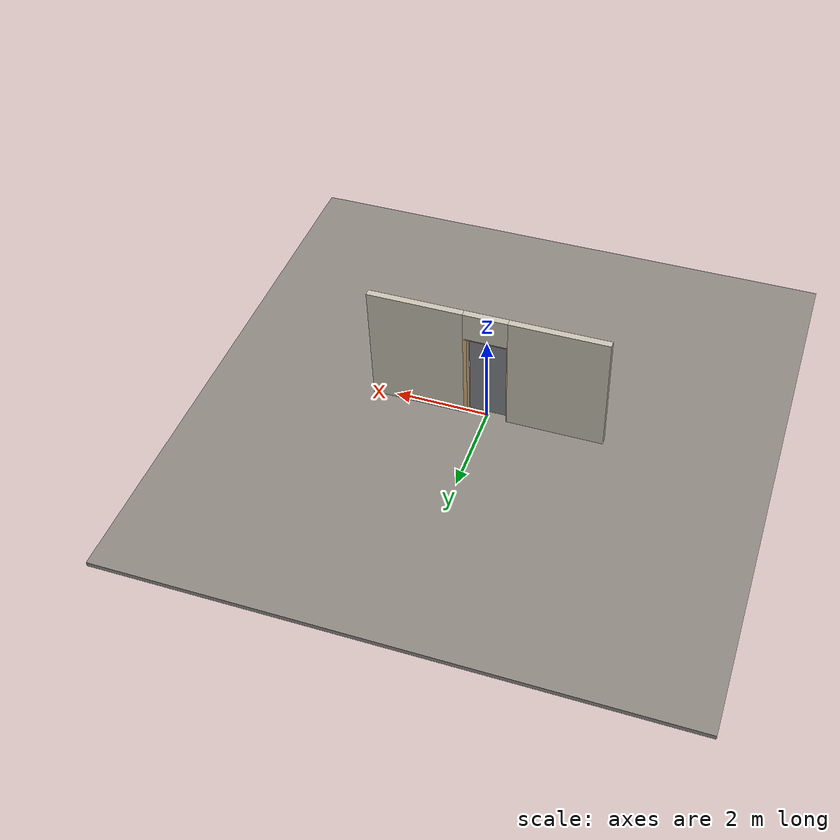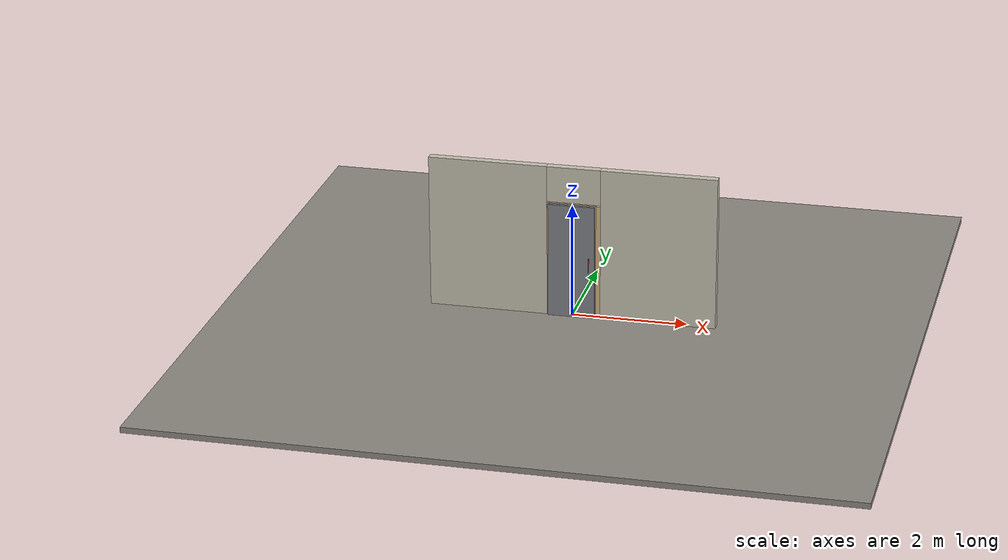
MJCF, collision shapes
<?xml version="1.0" ?>
<mujoco model="db0134_sliding_single_minimal">
  <compiler angle="radian" meshdir="../../hardware" texturedir="../../textures" autolimits="true" inertiafromgeom="false"/>
  <option timestep="0.002" integrator="implicitfast" cone="elliptic" impratio="10" noslip_iterations="3">
    <flag multiccd="enable"/>
  </option>
  <size memory="16M"/>
  <default>
    <geom condim="4" solref="0.005 1" solimp="0.95 0.99 0.001"/>
    <joint solreflimit="0.005 1" solimplimit="0.95 0.99 0.001"/>
    <tendon solreflimit="0.005 1"/>
    <equality solref="0.002 1"/>
  </default>
  <visual>
    <headlight ambient="0.4 0.4 0.4" diffuse="0.7 0.7 0.7" specular="0.2 0.2 0.2"/>
    <quality shadowsize="4096"/>
    <map znear="0.01" zfar="60"/>
  </visual>
  <asset>
    <mesh name="pull_2b47e55ff8" file="pull_2b47e55ff8.obj"/>
    <material name="mat_floor" rgba="0.55 0.53 0.5 1" specular="0.2" shininess="0.15" reflectance="0"/>
    <material name="mat_wall" rgba="0.78 0.76 0.7 1" specular="0.2" shininess="0.1" reflectance="0"/>
    <material name="mat_frame" rgba="0.82 0.7 0.5 1" specular="0.2" shininess="0.45" reflectance="0"/>
    <material name="mat_track" rgba="0.05 0.05 0.05 1" specular="0.38" shininess="0.3" reflectance="0.12"/>
    <material name="mat_leaf" rgba="0.5 0.51 0.53 1" specular="0.2" shininess="0.47" reflectance="0"/>
    <material name="mat_leaf_brace" rgba="0.45 0.459 0.477 1" specular="0.2" shininess="0.2" reflectance="0"/>
    <material name="mat_roller" rgba="0.65 0.66 0.68 1" specular="0.74" shininess="0.5" reflectance="0.36"/>
    <material name="mat_op_black_matte_metal" rgba="0.05 0.05 0.05 1" specular="0.38" shininess="0.3" reflectance="0.12"/>
    <material name="mat_teardrop" rgba="0.05 0.05 0.05 1" specular="0.38" shininess="0.3" reflectance="0.12"/>
    <material name="mat_hook" rgba="0.75 0.76 0.77 1" specular="0.8" shininess="0.65" reflectance="0.4"/>
    <texture name="skybox" type="skybox" builtin="gradient" rgb1="0.6 0.7 0.85" rgb2="0.9 0.92 0.95" width="256" height="256"/>
  </asset>
  <worldbody>
    <light name="sun" pos="1.5 -2.5 4" dir="-0.3 0.5 -0.8" directional="true" diffuse="0.8 0.8 0.8" specular="0.3 0.3 0.3" castshadow="true"/>
    <light name="fill" pos="-1.5 2.5 3" dir="0.3 -0.5 -0.7" directional="true" diffuse="0.35 0.35 0.4" castshadow="false"/>
    <camera name="robot_view" pos="0 -2.54875 1.73965" xyaxes="1 0 0 0 0.26963 0.962964" fovy="52"/>
    <camera name="far_view" pos="0 2.54875 1.73965" xyaxes="-1 0 0 0 -0.26963 0.962964" fovy="52"/>
    <camera name="iso" pos="1.93705 -2.14095 2.14745" xyaxes="0.741536 0.670913 0 -0.242917 0.268487 0.932151" fovy="46"/>
    <camera name="detail_handle" pos="0.4965 -0.9815 1.28" xyaxes="0.97561 0.219512 0 -0.070934 0.315262 0.94635" fovy="38"/>
    <geom name="floor" type="box" size="6 6 0.05" pos="0 0 -0.05" material="mat_floor" group="0" contype="1" conaffinity="1" friction="0.8 0.005 0.0001" density="2400"/>
    <geom name="wall_left" type="box" size="1.03225 0.0725 1.35" pos="-1.46775 0 1.35" material="mat_wall" group="0" contype="1" conaffinity="1" friction="0.6 0.005 0.0001" density="800"/>
    <geom name="wall_right" type="box" size="1.00225 0.0725 1.35" pos="1.49775 0 1.35" material="mat_wall" group="0" contype="1" conaffinity="1" friction="0.6 0.005 0.0001" density="800"/>
    <geom name="wall_header" type="box" size="0.4655 0.0725 0.3145" pos="0.03 0 2.3855" material="mat_wall" group="0" contype="1" conaffinity="1" friction="0.6 0.005 0.0001" density="800"/>
    <geom name="jamb_l" type="box" size="0.0095 0.0725 1.026" pos="-0.426 0 1.026" material="mat_frame" group="0" contype="1" conaffinity="1" friction="0.6 0.005 0.0001" density="300"/>
    <geom name="jamb_head" type="box" size="0.4355 0.0725 0.0095" pos="0 0 2.0615" material="mat_frame" group="0" contype="1" conaffinity="1" friction="0.6 0.005 0.0001" density="300"/>
    <geom name="jamb_latch_0" type="box" size="0.0395 0.0725 1.026" pos="0.456 0 1.026" material="mat_frame" group="0" contype="1" conaffinity="1" friction="0.6 0.005 0.0001" density="300"/>
    <site name="approach_point" pos="0 -1.5 0" quat="1 0 0 0" size="0.05" rgba="0.2 0.9 0.2 0.5" group="4"/>
    <site name="goal_point" pos="0 1.5 0" quat="1 0 0 0" size="0.05" rgba="0.2 0.9 0.2 0.5" group="4"/>
    <site name="door_plane_center" pos="0 0 1.026" quat="1 0 0 0" size="0.02" rgba="0.2 0.9 0.2 0.5" group="4"/>
    <body name="leaf" pos="0 -0.1145 0">
      <inertial pos="0.002843 -0.000531 1.027748" mass="55.414091" quat="0.500694 0.499166 -0.500811 0.499326" diaginertia="3.084953917 18.912176376 21.975839279"/>
      <joint name="leaf_slide" type="slide" axis="-1 0 0" limited="true" range="0 0.813" damping="4.776826" frictionloss="65.355275" armature="0.5"/>
      <geom name="leaf_slab" type="box" size="0.4065 0.022 1.016" pos="0 0 1.028" material="mat_leaf" group="0" contype="1" conaffinity="1" friction="0.4 0.005 0.0001" density="1"/>
      <geom name="leaf_pull_n" type="mesh" mesh="pull_2b47e55ff8" pos="0.3165 -0.022 1" quat="0.707107 0.707107 0 0" material="mat_op_black_matte_metal" group="1" contype="0" conaffinity="0" density="3000"/>
      <geom name="leaf_pull_col_n" type="capsule" size="0.006 0.13" pos="0.3165 -0.067 1" material="mat_op_black_matte_metal" group="3" contype="1" conaffinity="1" rgba="0.8 0.3 0.3 0.25" friction="0.7 0.01 0.0001" density="3000"/>
      <site name="leaf_pull_grip_n" pos="0.3165 -0.067 1" quat="1 0 0 0" size="0.012" rgba="0.2 0.9 0.2 0.5" group="4"/>
      <site name="leaf_edge_mid" pos="0.4065 0 1.028" quat="1 0 0 0" size="0.02" rgba="0.2 0.9 0.2 0.5" group="4"/>
    </body>
  </worldbody>
  <sensor>
    <jointpos name="leaf_slide_pos" joint="leaf_slide"/>
    <jointvel name="leaf_slide_vel" joint="leaf_slide"/>
  </sensor>
</mujoco>
